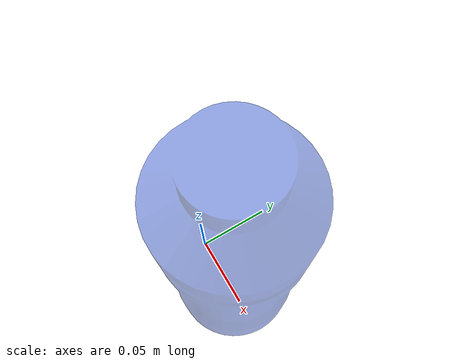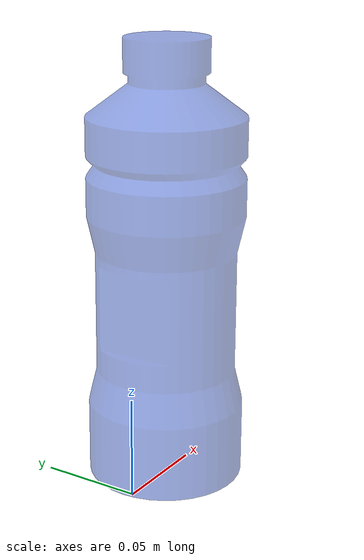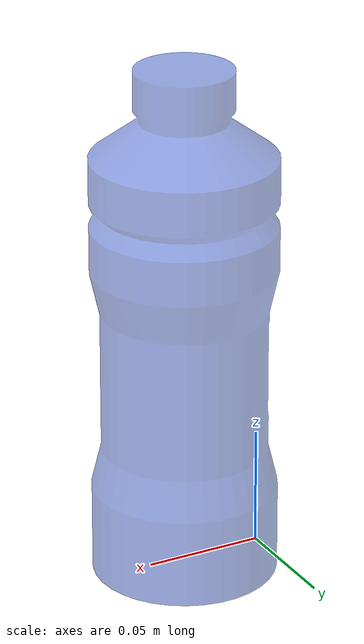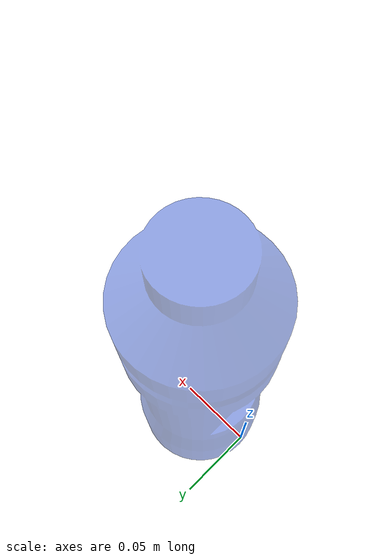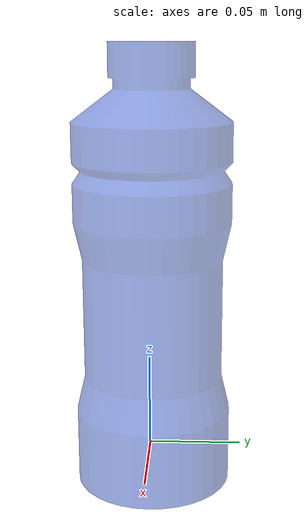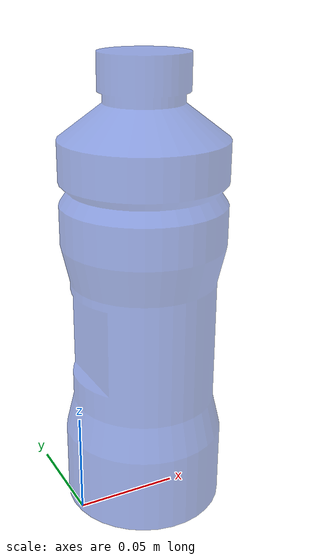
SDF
<?xml version='1.0'?>
<sdf version="1.4">
  <model name="bottle">
    <pose>-0.1 -0.07 0 0 0 0</pose>
    <static>false</static>
    <link name="link">
      <inertial>
        <pose>0.137 0.075 0.05 0 0 0</pose>
        <mass>0.27</mass>
        <inertia> <!-- inertias are computed considering the bottle as an hollow cylinder -->
          <ixx>0.000286</ixx>
          <ixy>0.0</ixy>
          <ixz>0.0</ixz>
          <iyy>0.000286</iyy>
          <iyz>0.0</iyz>
          <izz>0.000122</izz>
        </inertia>
      </inertial>
      <collision name="collision">
        <pose>0 0 0 0 0 0</pose>
        <geometry>
          <mesh>
            <uri>/root/tiago_public_ws/src/tiago_pouring/models/bottle3_empty/meshes/model.dae</uri>
            <scale>0.0254 0.0254 0.0254</scale>
          </mesh>
        </geometry>

        <surface>
          <contact>
            <!-- typical acrylic plastic material properties -->
            <poissons_ratio>0.35</poissons_ratio>
            <elastic_modulus>3.102640776e+09</elastic_modulus>
            <ode>
              <kp>100000</kp>
              <kd>100</kd>
              <max_vel>100.0</max_vel>
              <min_depth>0.001</min_depth>
            </ode>
          </contact>
          <friction>
            <torsional>
              <coefficient>1.0</coefficient>
              <use_patch_radius>0</use_patch_radius>
              <surface_radius>0.01</surface_radius>
            </torsional>
          </friction>
        </surface>
      </collision>

      <visual name="visual">
        <pose>0 0 0 0 0 0</pose>
        <geometry>
          <mesh>
            <uri>/root/tiago_public_ws/src/tiago_pouring/models/bottle3_empty/meshes/model.dae</uri>
            <scale>0.0254 0.0254 0.0254</scale>
          </mesh>
        </geometry>
        <material>
          <script>
            <uri>file://media/materials/scripts/gazebo.material</uri>
            <name>Gazebo/BlueTransparent</name>
          </script>
        </material>
      </visual>

    </link>
  </model>
</sdf>
